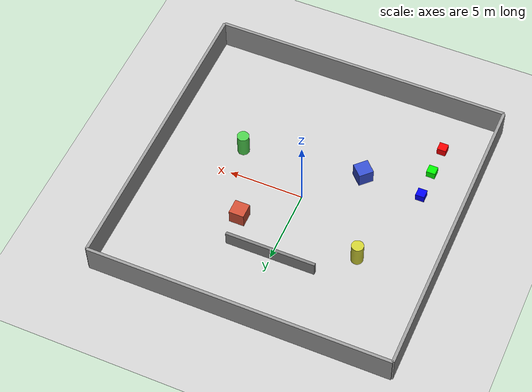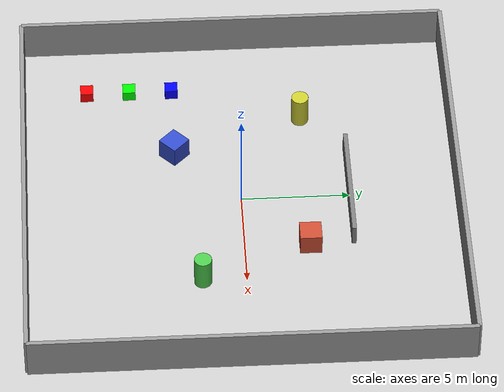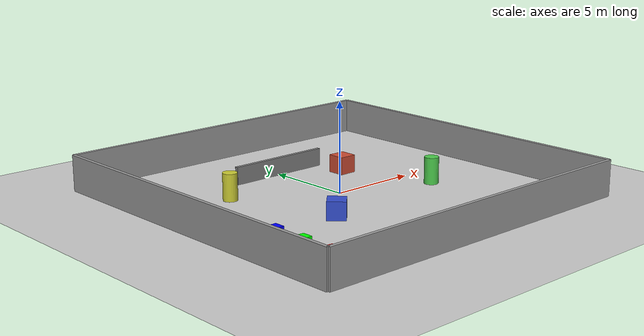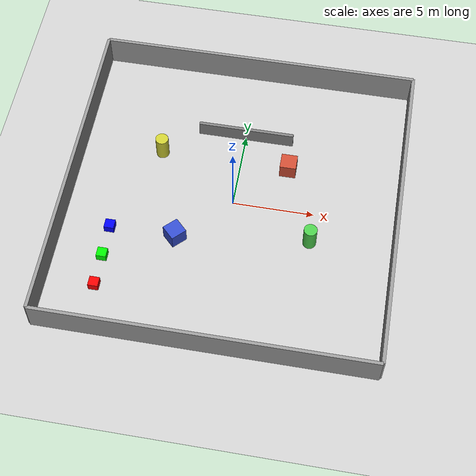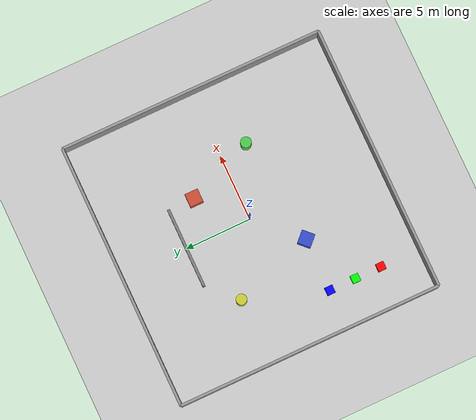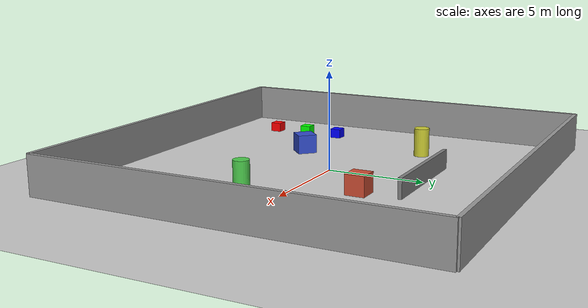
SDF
<?xml version="1.0" ?>
<sdf version="1.6">
  <world name="robosort_warehouse">

    <!-- Physics Settings -->
    <physics type="ode">
      <real_time_update_rate>1000.0</real_time_update_rate>
      <max_step_size>0.001</max_step_size>
      <real_time_factor>1</real_time_factor>
    </physics>

    <!-- Sun Light -->
    <include>
      <uri>model://sun</uri>
    </include>

    <!-- Ground Plane -->
    <include>
      <uri>model://ground_plane</uri>
    </include>

    <!-- Warehouse Walls -->
    <!-- North Wall -->
    <model name="north_wall">
      <static>true</static>
      <pose>0 10 1 0 0 0</pose>
      <link name="wall_link">
        <collision name="wall_collision">
          <geometry><box><size>20 0.2 2</size></box></geometry>
        </collision>
        <visual name="wall_visual">
          <geometry><box><size>20 0.2 2</size></box></geometry>
          <material><ambient>0.6 0.6 0.6 1</ambient></material>
        </visual>
      </link>
    </model>

    <!-- South Wall -->
    <model name="south_wall">
      <static>true</static>
      <pose>0 -10 1 0 0 0</pose>
      <link name="wall_link">
        <collision name="wall_collision">
          <geometry><box><size>20 0.2 2</size></box></geometry>
        </collision>
        <visual name="wall_visual">
          <geometry><box><size>20 0.2 2</size></box></geometry>
          <material><ambient>0.6 0.6 0.6 1</ambient></material>
        </visual>
      </link>
    </model>

    <!-- East Wall -->
    <model name="east_wall">
      <static>true</static>
      <pose>10 0 1 0 0 0</pose>
      <link name="wall_link">
        <collision name="wall_collision">
          <geometry><box><size>0.2 20 2</size></box></geometry>
        </collision>
        <visual name="wall_visual">
          <geometry><box><size>0.2 20 2</size></box></geometry>
          <material><ambient>0.6 0.6 0.6 1</ambient></material>
        </visual>
      </link>
    </model>

    <!-- West Wall -->
    <model name="west_wall">
      <static>true</static>
      <pose>-10 0 1 0 0 0</pose>
      <link name="wall_link">
        <collision name="wall_collision">
          <geometry><box><size>0.2 20 2</size></box></geometry>
        </collision>
        <visual name="wall_visual">
          <geometry><box><size>0.2 20 2</size></box></geometry>
          <material><ambient>0.6 0.6 0.6 1</ambient></material>
        </visual>
      </link>
    </model>

    <!-- Box Obstacles -->
    <model name="box_obstacle_1">
      <static>true</static>
      <pose>3 3 0.5 0 0 0</pose>
      <link name="box_link">
        <collision name="box_collision">
          <geometry><box><size>1 1 1</size></box></geometry>
        </collision>
        <visual name="box_visual">
          <geometry><box><size>1 1 1</size></box></geometry>
          <material><ambient>0.8 0.3 0.2 1</ambient></material>
        </visual>
      </link>
    </model>

    <model name="box_obstacle_2">
      <static>true</static>
      <pose>-3 -3 0.5 0 0 0.785</pose>
      <link name="box_link">
        <collision name="box_collision">
          <geometry><box><size>1 1 1</size></box></geometry>
        </collision>
        <visual name="box_visual">
          <geometry><box><size>1 1 1</size></box></geometry>
          <material><ambient>0.2 0.3 0.8 1</ambient></material>
        </visual>
      </link>
    </model>

    <!-- Cylinder Obstacles (Barrels) -->
    <model name="cylinder_obstacle_1">
      <static>true</static>
      <pose>5 -2 0.75 0 0 0</pose>
      <link name="cylinder_link">
        <collision name="cylinder_collision">
          <geometry><cylinder><radius>0.4</radius><length>1.5</length></cylinder></geometry>
        </collision>
        <visual name="cylinder_visual">
          <geometry><cylinder><radius>0.4</radius><length>1.5</length></cylinder></geometry>
          <material><ambient>0.3 0.8 0.3 1</ambient></material>
        </visual>
      </link>
    </model>

    <model name="cylinder_obstacle_2">
      <static>true</static>
      <pose>-5 3 0.75 0 0 0</pose>
      <link name="cylinder_link">
        <collision name="cylinder_collision">
          <geometry><cylinder><radius>0.4</radius><length>1.5</length></cylinder></geometry>
        </collision>
        <visual name="cylinder_visual">
          <geometry><cylinder><radius>0.4</radius><length>1.5</length></cylinder></geometry>
          <material><ambient>0.8 0.8 0.2 1</ambient></material>
        </visual>
      </link>
    </model>

    <!-- Internal Wall Divider -->
    <model name="divider_wall">
      <static>true</static>
      <pose>0 5 0.5 0 0 0</pose>
      <link name="wall_link">
        <collision name="wall_collision">
          <geometry><box><size>6 0.2 1</size></box></geometry>
        </collision>
        <visual name="wall_visual">
          <geometry><box><size>6 0.2 1</size></box></geometry>
          <material><ambient>0.5 0.5 0.5 1</ambient></material>
        </visual>
      </link>
    </model>

    <!-- Sorting Bins (Red, Green, Blue) -->
    <model name="sorting_bin_red">
      <static>true</static>
      <pose>-7 -7 0.25 0 0 0</pose>
      <link name="bin_link">
        <collision name="bin_collision">
          <geometry><box><size>0.6 0.6 0.5</size></box></geometry>
        </collision>
        <visual name="bin_visual">
          <geometry><box><size>0.6 0.6 0.5</size></box></geometry>
          <material><ambient>1 0 0 1</ambient></material>
        </visual>
      </link>
    </model>

    <model name="sorting_bin_green">
      <static>true</static>
      <pose>-7 -5 0.25 0 0 0</pose>
      <link name="bin_link">
        <collision name="bin_collision">
          <geometry><box><size>0.6 0.6 0.5</size></box></geometry>
        </collision>
        <visual name="bin_visual">
          <geometry><box><size>0.6 0.6 0.5</size></box></geometry>
          <material><ambient>0 1 0 1</ambient></material>
        </visual>
      </link>
    </model>

    <model name="sorting_bin_blue">
      <static>true</static>
      <pose>-7 -3 0.25 0 0 0</pose>
      <link name="bin_link">
        <collision name="bin_collision">
          <geometry><box><size>0.6 0.6 0.5</size></box></geometry>
        </collision>
        <visual name="bin_visual">
          <geometry><box><size>0.6 0.6 0.5</size></box></geometry>
          <material><ambient>0 0 1 1</ambient></material>
        </visual>
      </link>
    </model>

    <!-- Scene Configuration -->
    <scene>
      <ambient>0.4 0.4 0.4 1</ambient>
      <background>0.7 0.7 0.7 1</background>
      <shadows>1</shadows>
    </scene>

    <!-- GUI Settings -->
    <gui fullscreen='0'>
      <camera name='user_camera'>
        <pose>-8 -8 8 0 0.6 0.785</pose>
        <view_controller>orbit</view_controller>
      </camera>
    </gui>

  </world>
</sdf>
